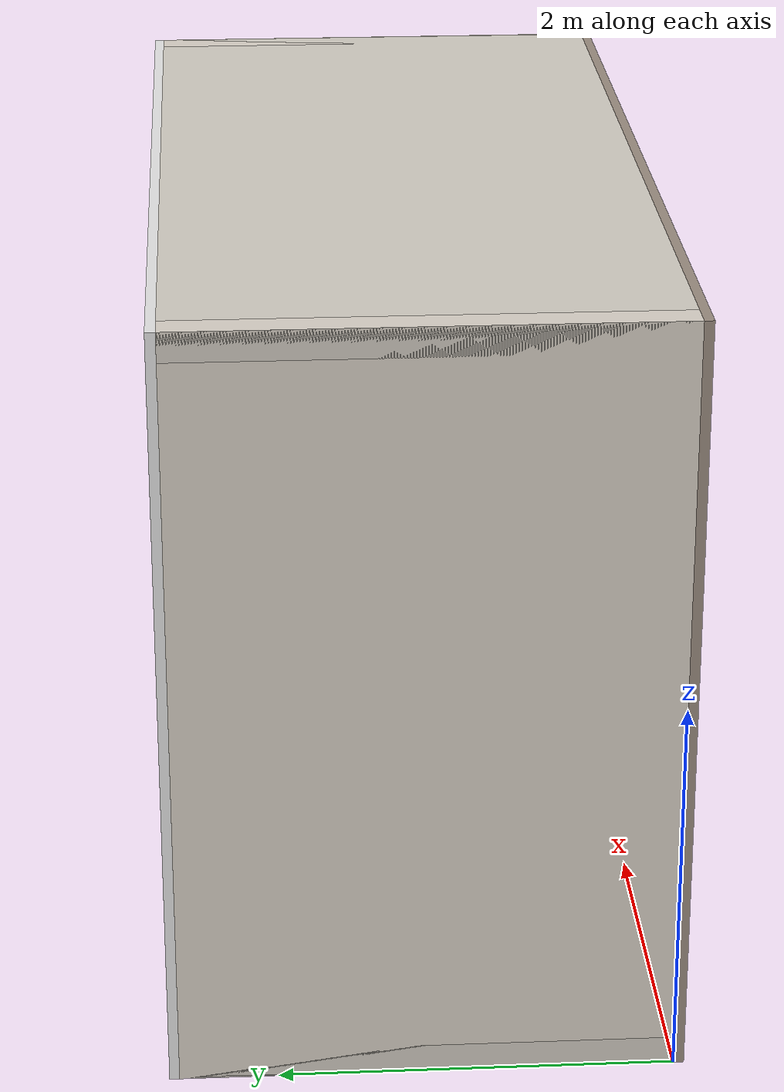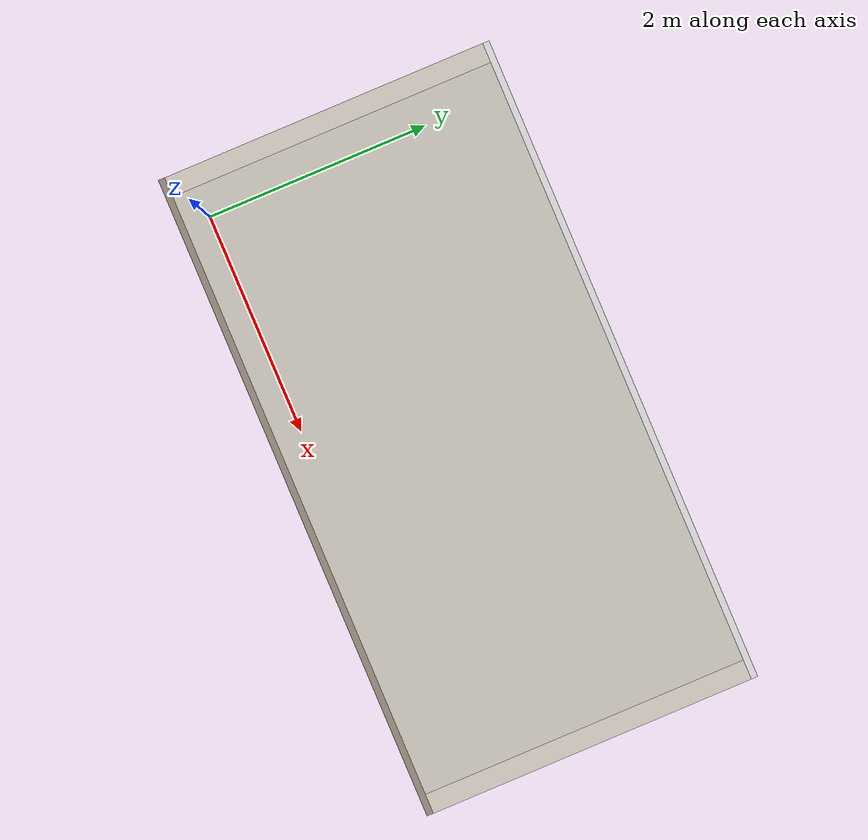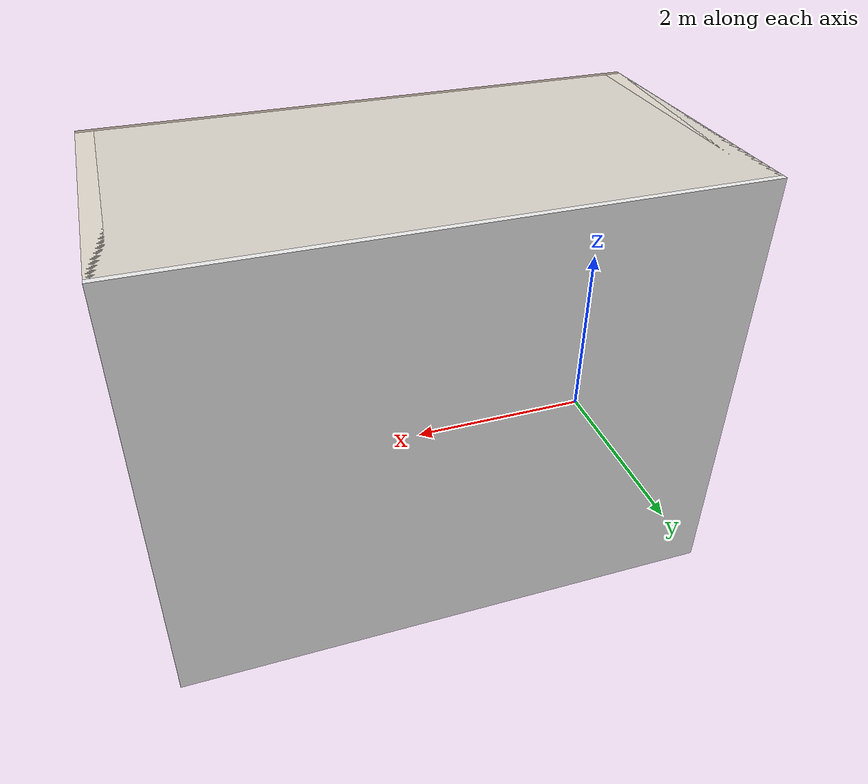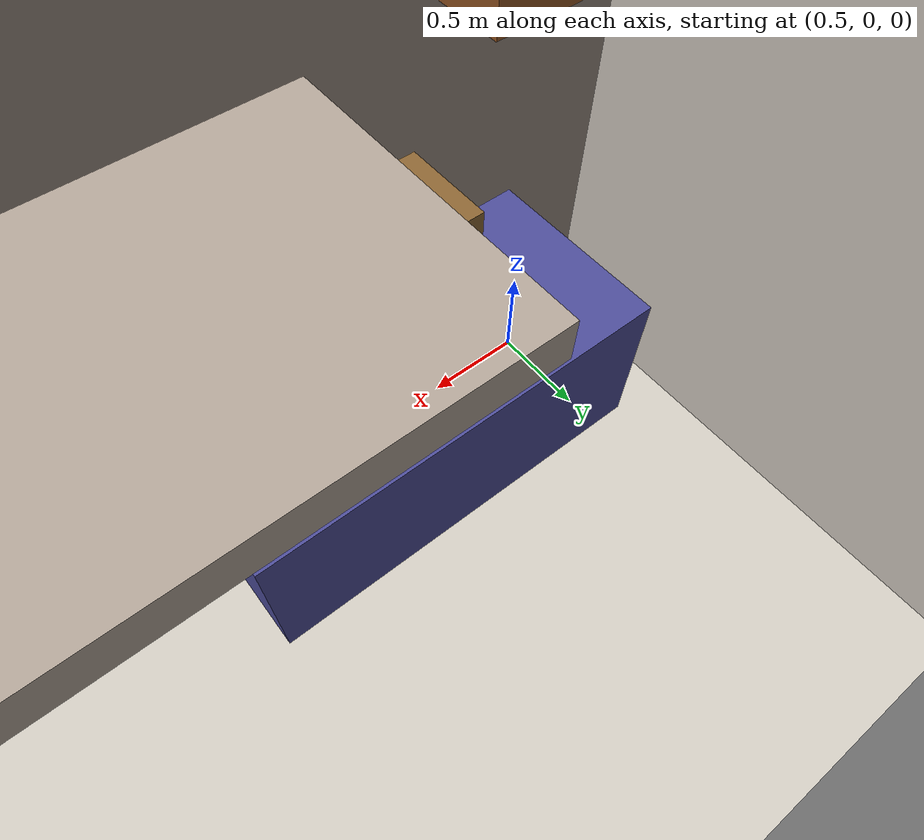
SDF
<?xml version="1.0" ?>
<sdf version="1.8">
  <world name="living_room_occluded">

    <!-- Physics -->
    <physics type="ode">
      <max_step_size>0.001</max_step_size>
      <real_time_factor>1.0</real_time_factor>
      <real_time_update_rate>1000</real_time_update_rate>
    </physics>

    <!-- Lighting (single overhead + ambient) -->
    <light name="sun" type="directional">
      <cast_shadows>true</cast_shadows>
      <pose>0 0 10 0 0 0</pose>
      <diffuse>0.8 0.8 0.8 1</diffuse>
      <specular>0.2 0.2 0.2 1</specular>
      <direction>-0.5 0.1 -0.9</direction>
    </light>
    <ambient>0.3 0.3 0.3 1</ambient>

    <!-- ── Room Structure ────────────────────────────────────────────── -->

    <!-- Floor -->
    <model name="floor">
      <static>true</static>
      <link name="link">
        <collision name="collision">
          <geometry><box><size>5.0 0.05 4.0</size></box></geometry>
        </collision>
        <visual name="visual">
          <geometry><box><size>5.0 0.05 4.0</size></box></geometry>
          <material><ambient>0.6 0.55 0.5 1</ambient></material>
        </visual>
        <pose>2.5 -0.025 2.0 0 0 0</pose>
      </link>
    </model>

    <!-- Ceiling -->
    <model name="ceiling">
      <static>true</static>
      <link name="link">
        <collision name="collision">
          <geometry><box><size>5.0 0.05 4.0</size></box></geometry>
        </collision>
        <visual name="visual">
          <geometry><box><size>5.0 0.05 4.0</size></box></geometry>
          <material><ambient>0.9 0.9 0.9 1</ambient></material>
        </visual>
        <pose>2.5 2.525 2.0 0 0 0</pose>
      </link>
    </model>

    <!-- Wall: -X (left) -->
    <model name="wall_left">
      <static>true</static>
      <link name="link">
        <collision name="c"><geometry><box><size>0.15 2.5 4.0</size></box></geometry></collision>
        <visual name="v"><geometry><box><size>0.15 2.5 4.0</size></box></geometry>
          <material><ambient>0.85 0.82 0.78 1</ambient></material></visual>
        <pose>0.075 1.25 2.0 0 0 0</pose>
      </link>
    </model>

    <!-- Wall: +X (right) -->
    <model name="wall_right">
      <static>true</static>
      <link name="link">
        <collision name="c"><geometry><box><size>0.15 2.5 4.0</size></box></geometry></collision>
        <visual name="v"><geometry><box><size>0.15 2.5 4.0</size></box></geometry>
          <material><ambient>0.85 0.82 0.78 1</ambient></material></visual>
        <pose>4.925 1.25 2.0 0 0 0</pose>
      </link>
    </model>

    <!-- Wall: -Z (front) -->
    <model name="wall_front">
      <static>true</static>
      <link name="link">
        <collision name="c"><geometry><box><size>5.0 2.5 0.15</size></box></geometry></collision>
        <visual name="v"><geometry><box><size>5.0 2.5 0.15</size></box></geometry>
          <material><ambient>0.82 0.80 0.76 1</ambient></material></visual>
        <pose>2.5 1.25 0.075 0 0 0</pose>
      </link>
    </model>

    <!-- Wall: +Z (back) -->
    <model name="wall_back">
      <static>true</static>
      <link name="link">
        <collision name="c"><geometry><box><size>5.0 2.5 0.15</size></box></geometry></collision>
        <visual name="v"><geometry><box><size>5.0 2.5 0.15</size></box></geometry>
          <material><ambient>0.82 0.80 0.76 1</ambient></material></visual>
        <pose>2.5 1.25 3.925 0 0 0</pose>
      </link>
    </model>

    <!-- ── Divider Wall (creates occlusion) ─────────────────────────── -->
    <!-- Half-height wall blocking view of rear furniture -->
    <model name="divider_wall">
      <static>true</static>
      <link name="link">
        <collision name="c"><geometry><box><size>2.0 1.2 0.15</size></box></geometry></collision>
        <visual name="v"><geometry><box><size>2.0 1.2 0.15</size></box></geometry>
          <material><ambient>0.7 0.65 0.6 1</ambient></material></visual>
        <pose>2.5 0.6 2.0 0 0 0</pose>
      </link>
    </model>

    <!-- ── Visible Furniture (front area, BLUE/TEAL) ─────────────────── -->

    <!-- Sofa -->
    <model name="sofa">
      <static>true</static>
      <link name="link">
        <collision name="c"><geometry><box><size>1.8 0.85 0.7</size></box></geometry></collision>
        <visual name="v"><geometry><box><size>1.8 0.85 0.7</size></box></geometry>
          <material><ambient>0.3 0.3 0.6 1</ambient></material></visual>
        <pose>1.5 0.425 0.8 0 0 0</pose>
      </link>
    </model>

    <!-- Coffee Table -->
    <model name="coffee_table">
      <static>true</static>
      <link name="link">
        <collision name="c"><geometry><box><size>0.8 0.4 0.5</size></box></geometry></collision>
        <visual name="v"><geometry><box><size>0.8 0.4 0.5</size></box></geometry>
          <material><ambient>0.55 0.4 0.2 1</ambient></material></visual>
        <pose>1.5 0.2 1.35 0 0 0</pose>
      </link>
    </model>

    <!-- ── Occluded Furniture (rear area, GREEN target) ──────────────── -->

    <!-- Occluded Chair (behind divider) -->
    <model name="chair_occluded">
      <static>true</static>
      <link name="link">
        <collision name="c"><geometry><box><size>0.5 0.9 0.5</size></box></geometry></collision>
        <visual name="v"><geometry><box><size>0.5 0.9 0.5</size></box></geometry>
          <material><ambient>0.6 0.35 0.15 1</ambient></material></visual>
        <pose>1.3 0.45 2.9 0 0 0</pose>
      </link>
    </model>

    <!-- Occluded Desk (behind divider) -->
    <model name="desk_occluded">
      <static>true</static>
      <link name="link">
        <collision name="c"><geometry><box><size>1.2 0.75 0.6</size></box></geometry></collision>
        <visual name="v"><geometry><box><size>1.2 0.75 0.6</size></box></geometry>
          <material><ambient>0.5 0.45 0.35 1</ambient></material></visual>
        <pose>3.2 0.375 3.2 0 0 0</pose>
      </link>
    </model>

    <!-- Occluded Box (behind divider) -->
    <model name="box_occluded">
      <static>true</static>
      <link name="link">
        <collision name="c"><geometry><box><size>0.3 0.3 0.3</size></box></geometry></collision>
        <visual name="v"><geometry><box><size>0.3 0.3 0.3</size></box></geometry>
          <material><ambient>0.4 0.6 0.4 1</ambient></material></visual>
        <pose>3.8 0.15 3.5 0 0 0</pose>
      </link>
    </model>

    <!-- ── Robot spawn point ────────────────────────────────────────── -->
    <!-- TurtleBot3 spawns at front-centre, facing toward divider -->
    <!-- Spawn command in launch file: x=2.5, y=0.5, z=0.1, yaw=1.57 -->

  </world>
</sdf>
